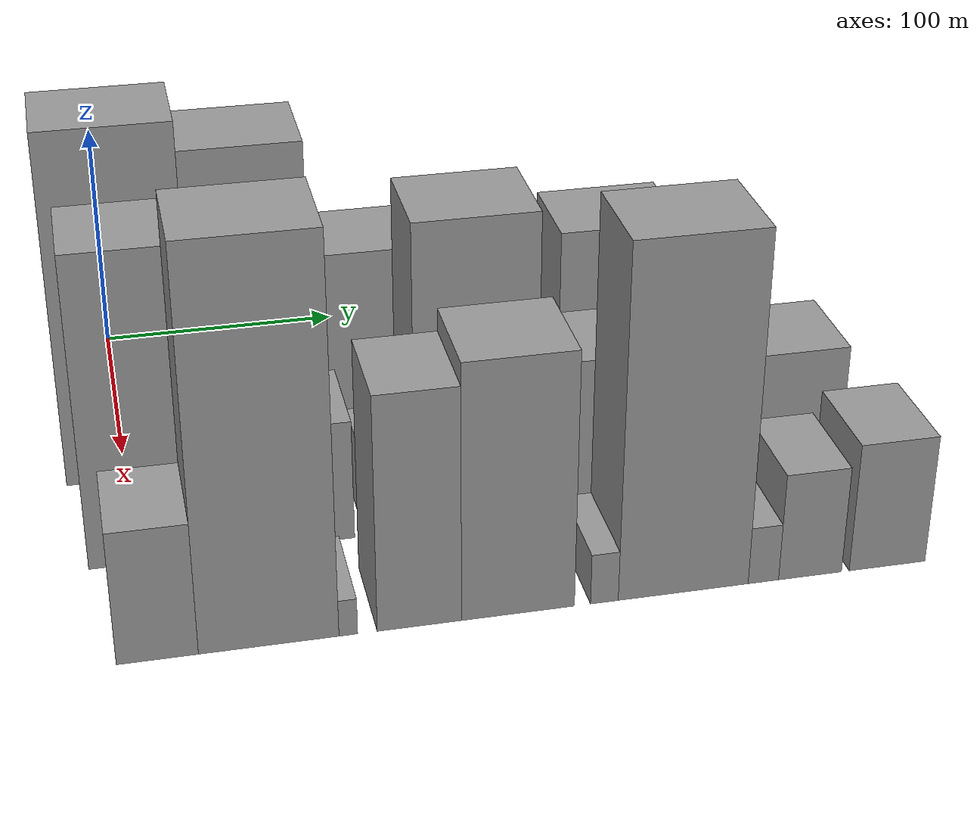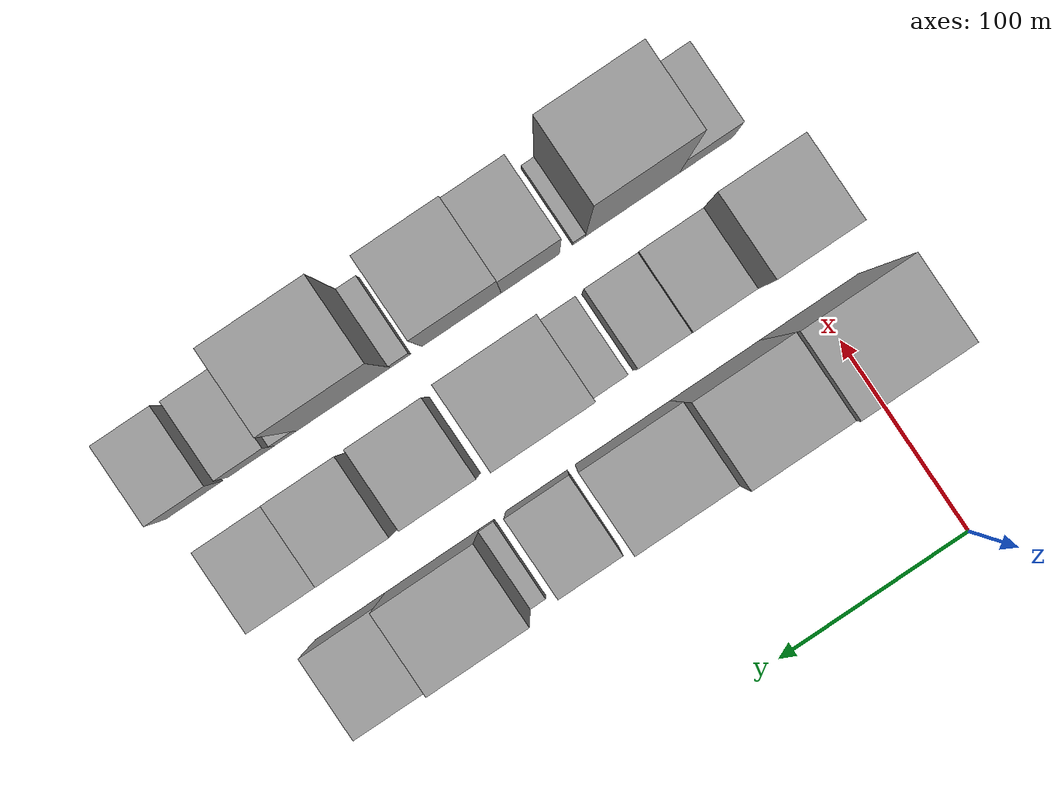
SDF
<sdf version="1.6">
 <world name="default">
  <model name="building_16">
   <static>1</static>
   <pose>100.0000 3.0537 0 0.000000 0.000000 0.000000</pose>
   <link name="link">
    <pose>0 0 75.00 0 0 0</pose>
    <collision name="collision"><geometry><box><size>40.0000 52.0484 150.0000</size></box></geometry></collision>
    <visual name="visual">
     <cast_shadows>0</cast_shadows>
     <geometry><box><size>40.0000 52.0484 150.0000</size></box></geometry>
     <material>
      <script>
       <uri>model://grey_wall/materials/scripts</uri>
       <uri>model://grey_wall/materials/textures</uri>
       <name>vrc/grey_wall</name>
      </script>
     </material>
    </visual>
   </link>
  </model>
  <model name="building_17">
   <static>1</static>
   <pose>100.0000 52.6405 0 0.000000 0.000000 0.000000</pose>
   <link name="link">
    <pose>0 0 69.00 0 0 0</pose>
    <collision name="collision"><geometry><box><size>40.0000 47.1252 138.0000</size></box></geometry></collision>
    <visual name="visual">
     <cast_shadows>0</cast_shadows>
     <geometry><box><size>40.0000 47.1252 138.0000</size></box></geometry>
     <material>
      <script>
       <uri>model://grey_wall/materials/scripts</uri>
       <uri>model://grey_wall/materials/textures</uri>
       <name>vrc/grey_wall</name>
      </script>
     </material>
    </visual>
   </link>
  </model>
  <model name="building_18">
   <static>1</static>
   <pose>100.0000 101.2322 0 0.000000 0.000000 0.000000</pose>
   <link name="link">
    <pose>0 0 45.00 0 0 0</pose>
    <collision name="collision"><geometry><box><size>40.0000 50.0583 90.0000</size></box></geometry></collision>
    <visual name="visual">
     <cast_shadows>0</cast_shadows>
     <geometry><box><size>40.0000 50.0583 90.0000</size></box></geometry>
     <material>
      <script>
       <uri>model://grey_wall/materials/scripts</uri>
       <uri>model://grey_wall/materials/textures</uri>
       <name>vrc/grey_wall</name>
      </script>
     </material>
    </visual>
   </link>
  </model>
  <model name="building_19">
   <static>1</static>
   <pose>100.0000 146.4236 0 0.000000 0.000000 0.000000</pose>
   <link name="link">
    <pose>0 0 28.50 0 0 0</pose>
    <collision name="collision"><geometry><box><size>40.0000 32.3245 57.0000</size></box></geometry></collision>
    <visual name="visual">
     <cast_shadows>0</cast_shadows>
     <geometry><box><size>40.0000 32.3245 57.0000</size></box></geometry>
     <material>
      <script>
       <uri>model://grey_wall/materials/scripts</uri>
       <uri>model://grey_wall/materials/textures</uri>
       <name>vrc/grey_wall</name>
      </script>
     </material>
    </visual>
   </link>
  </model>
  <model name="building_20">
   <static>1</static>
   <pose>100.0000 172.5480 0 0.000000 0.000000 0.000000</pose>
   <link name="link">
    <pose>0 0 9.00 0 0 0</pose>
    <collision name="collision"><geometry><box><size>40.0000 7.9243 18.0000</size></box></geometry></collision>
    <visual name="visual">
     <cast_shadows>0</cast_shadows>
     <geometry><box><size>40.0000 7.9243 18.0000</size></box></geometry>
     <material>
      <script>
       <uri>model://grey_wall/materials/scripts</uri>
       <uri>model://grey_wall/materials/textures</uri>
       <name>vrc/grey_wall</name>
      </script>
     </material>
    </visual>
   </link>
  </model>
  <model name="building_21">
   <static>1</static>
   <pose>100.0000 201.1346 0 0.000000 0.000000 0.000000</pose>
   <link name="link">
    <pose>0 0 45.00 0 0 0</pose>
    <collision name="collision"><geometry><box><size>40.0000 49.2489 90.0000</size></box></geometry></collision>
    <visual name="visual">
     <cast_shadows>0</cast_shadows>
     <geometry><box><size>40.0000 49.2489 90.0000</size></box></geometry>
     <material>
      <script>
       <uri>model://grey_wall/materials/scripts</uri>
       <uri>model://grey_wall/materials/textures</uri>
       <name>vrc/grey_wall</name>
      </script>
     </material>
    </visual>
   </link>
  </model>
  <model name="building_22">
   <static>1</static>
   <pose>100.0000 244.1999 0 0.000000 0.000000 0.000000</pose>
   <link name="link">
    <pose>0 0 34.50 0 0 0</pose>
    <collision name="collision"><geometry><box><size>40.0000 36.8816 69.0000</size></box></geometry></collision>
    <visual name="visual">
     <cast_shadows>0</cast_shadows>
     <geometry><box><size>40.0000 36.8816 69.0000</size></box></geometry>
     <material>
      <script>
       <uri>model://grey_wall/materials/scripts</uri>
       <uri>model://grey_wall/materials/textures</uri>
       <name>vrc/grey_wall</name>
      </script>
     </material>
    </visual>
   </link>
  </model>
  <model name="building_50">
   <static>1</static>
   <pose>160.0000 2.9034 0 0.000000 0.000000 0.000000</pose>
   <link name="link">
    <pose>0 0 64.50 0 0 0</pose>
    <collision name="collision"><geometry><box><size>40.0000 40.4911 129.0000</size></box></geometry></collision>
    <visual name="visual">
     <cast_shadows>0</cast_shadows>
     <geometry><box><size>40.0000 40.4911 129.0000</size></box></geometry>
     <material>
      <script>
       <uri>model://grey_wall/materials/scripts</uri>
       <uri>model://grey_wall/materials/textures</uri>
       <name>vrc/grey_wall</name>
      </script>
     </material>
    </visual>
   </link>
  </model>
  <model name="building_51">
   <static>1</static>
   <pose>160.0000 39.2276 0 0.000000 0.000000 0.000000</pose>
   <link name="link">
    <pose>0 0 28.50 0 0 0</pose>
    <collision name="collision"><geometry><box><size>40.0000 32.1573 57.0000</size></box></geometry></collision>
    <visual name="visual">
     <cast_shadows>0</cast_shadows>
     <geometry><box><size>40.0000 32.1573 57.0000</size></box></geometry>
     <material>
      <script>
       <uri>model://grey_wall/materials/scripts</uri>
       <uri>model://grey_wall/materials/textures</uri>
       <name>vrc/grey_wall</name>
      </script>
     </material>
    </visual>
   </link>
  </model>
  <model name="building_52">
   <static>1</static>
   <pose>160.0000 68.7765 0 0.000000 0.000000 0.000000</pose>
   <link name="link">
    <pose>0 0 25.50 0 0 0</pose>
    <collision name="collision"><geometry><box><size>40.0000 26.9407 51.0000</size></box></geometry></collision>
    <visual name="visual">
     <cast_shadows>0</cast_shadows>
     <geometry><box><size>40.0000 26.9407 51.0000</size></box></geometry>
     <material>
      <script>
       <uri>model://grey_wall/materials/scripts</uri>
       <uri>model://grey_wall/materials/textures</uri>
       <name>vrc/grey_wall</name>
      </script>
     </material>
    </visual>
   </link>
  </model>
  <model name="building_53">
   <static>1</static>
   <pose>160.0000 95.9330 0 0.000000 0.000000 0.000000</pose>
   <link name="link">
    <pose>0 0 16.50 0 0 0</pose>
    <collision name="collision"><geometry><box><size>40.0000 19.3723 33.0000</size></box></geometry></collision>
    <visual name="visual">
     <cast_shadows>0</cast_shadows>
     <geometry><box><size>40.0000 19.3723 33.0000</size></box></geometry>
     <material>
      <script>
       <uri>model://grey_wall/materials/scripts</uri>
       <uri>model://grey_wall/materials/textures</uri>
       <name>vrc/grey_wall</name>
      </script>
     </material>
    </visual>
   </link>
  </model>
  <model name="building_54">
   <static>1</static>
   <pose>160.0000 129.4834 0 0.000000 0.000000 0.000000</pose>
   <link name="link">
    <pose>0 0 64.50 0 0 0</pose>
    <collision name="collision"><geometry><box><size>40.0000 47.7286 129.0000</size></box></geometry></collision>
    <visual name="visual">
     <cast_shadows>0</cast_shadows>
     <geometry><box><size>40.0000 47.7286 129.0000</size></box></geometry>
     <material>
      <script>
       <uri>model://grey_wall/materials/scripts</uri>
       <uri>model://grey_wall/materials/textures</uri>
       <name>vrc/grey_wall</name>
      </script>
     </material>
    </visual>
   </link>
  </model>
  <model name="building_55">
   <static>1</static>
   <pose>160.0000 181.3222 0 0.000000 0.000000 0.000000</pose>
   <link name="link">
    <pose>0 0 33.00 0 0 0</pose>
    <collision name="collision"><geometry><box><size>40.0000 37.9489 66.0000</size></box></geometry></collision>
    <visual name="visual">
     <cast_shadows>0</cast_shadows>
     <geometry><box><size>40.0000 37.9489 66.0000</size></box></geometry>
     <material>
      <script>
       <uri>model://grey_wall/materials/scripts</uri>
       <uri>model://grey_wall/materials/textures</uri>
       <name>vrc/grey_wall</name>
      </script>
     </material>
    </visual>
   </link>
  </model>
  <model name="building_56">
   <static>1</static>
   <pose>160.0000 223.4283 0 0.000000 0.000000 0.000000</pose>
   <link name="link">
    <pose>0 0 31.50 0 0 0</pose>
    <collision name="collision"><geometry><box><size>40.0000 36.2633 63.0000</size></box></geometry></collision>
    <visual name="visual">
     <cast_shadows>0</cast_shadows>
     <geometry><box><size>40.0000 36.2633 63.0000</size></box></geometry>
     <material>
      <script>
       <uri>model://grey_wall/materials/scripts</uri>
       <uri>model://grey_wall/materials/textures</uri>
       <name>vrc/grey_wall</name>
      </script>
     </material>
    </visual>
   </link>
  </model>
  <model name="building_57">
   <static>1</static>
   <pose>160.0000 258.8193 0 0.000000 0.000000 0.000000</pose>
   <link name="link">
    <pose>0 0 30.00 0 0 0</pose>
    <collision name="collision"><geometry><box><size>40.0000 34.5187 60.0000</size></box></geometry></collision>
    <visual name="visual">
     <cast_shadows>0</cast_shadows>
     <geometry><box><size>40.0000 34.5187 60.0000</size></box></geometry>
     <material>
      <script>
       <uri>model://grey_wall/materials/scripts</uri>
       <uri>model://grey_wall/materials/textures</uri>
       <name>vrc/grey_wall</name>
      </script>
     </material>
    </visual>
   </link>
  </model>
  <model name="building_84">
   <static>1</static>
   <pose>220.0000 3.2790 0 0.000000 0.000000 0.000000</pose>
   <link name="link">
    <pose>0 0 27.00 0 0 0</pose>
    <collision name="collision"><geometry><box><size>40.0000 28.3241 54.0000</size></box></geometry></collision>
    <visual name="visual">
     <cast_shadows>0</cast_shadows>
     <geometry><box><size>40.0000 28.3241 54.0000</size></box></geometry>
     <material>
      <script>
       <uri>model://grey_wall/materials/scripts</uri>
       <uri>model://grey_wall/materials/textures</uri>
       <name>vrc/grey_wall</name>
      </script>
     </material>
    </visual>
   </link>
  </model>
  <model name="building_85">
   <static>1</static>
   <pose>220.0000 42.1496 0 0.000000 0.000000 0.000000</pose>
   <link name="link">
    <pose>0 0 79.50 0 0 0</pose>
    <collision name="collision"><geometry><box><size>40.0000 49.4169 159.0000</size></box></geometry></collision>
    <visual name="visual">
     <cast_shadows>0</cast_shadows>
     <geometry><box><size>40.0000 49.4169 159.0000</size></box></geometry>
     <material>
      <script>
       <uri>model://grey_wall/materials/scripts</uri>
       <uri>model://grey_wall/materials/textures</uri>
       <name>vrc/grey_wall</name>
      </script>
     </material>
    </visual>
   </link>
  </model>
  <model name="building_86">
   <static>1</static>
   <pose>220.0000 70.1875 0 0.000000 0.000000 0.000000</pose>
   <link name="link">
    <pose>0 0 7.50 0 0 0</pose>
    <collision name="collision"><geometry><box><size>40.0000 6.6591 15.0000</size></box></geometry></collision>
    <visual name="visual">
     <cast_shadows>0</cast_shadows>
     <geometry><box><size>40.0000 6.6591 15.0000</size></box></geometry>
     <material>
      <script>
       <uri>model://grey_wall/materials/scripts</uri>
       <uri>model://grey_wall/materials/textures</uri>
       <name>vrc/grey_wall</name>
      </script>
     </material>
    </visual>
   </link>
  </model>
  <model name="building_87">
   <static>1</static>
   <pose>220.0000 95.7562 0 0.000000 0.000000 0.000000</pose>
   <link name="link">
    <pose>0 0 48.00 0 0 0</pose>
    <collision name="collision"><geometry><box><size>40.0000 30.4783 96.0000</size></box></geometry></collision>
    <visual name="visual">
     <cast_shadows>0</cast_shadows>
     <geometry><box><size>40.0000 30.4783 96.0000</size></box></geometry>
     <material>
      <script>
       <uri>model://grey_wall/materials/scripts</uri>
       <uri>model://grey_wall/materials/textures</uri>
       <name>vrc/grey_wall</name>
      </script>
     </material>
    </visual>
   </link>
  </model>
  <model name="building_88">
   <static>1</static>
   <pose>220.0000 131.7616 0 0.000000 0.000000 0.000000</pose>
   <link name="link">
    <pose>0 0 52.50 0 0 0</pose>
    <collision name="collision"><geometry><box><size>40.0000 41.5324 105.0000</size></box></geometry></collision>
    <visual name="visual">
     <cast_shadows>0</cast_shadows>
     <geometry><box><size>40.0000 41.5324 105.0000</size></box></geometry>
     <material>
      <script>
       <uri>model://grey_wall/materials/scripts</uri>
       <uri>model://grey_wall/materials/textures</uri>
       <name>vrc/grey_wall</name>
      </script>
     </material>
    </visual>
   </link>
  </model>
  <model name="building_89">
   <static>1</static>
   <pose>220.0000 163.7137 0 0.000000 0.000000 0.000000</pose>
   <link name="link">
    <pose>0 0 10.50 0 0 0</pose>
    <collision name="collision"><geometry><box><size>40.0000 10.3719 21.0000</size></box></geometry></collision>
    <visual name="visual">
     <cast_shadows>0</cast_shadows>
     <geometry><box><size>40.0000 10.3719 21.0000</size></box></geometry>
     <material>
      <script>
       <uri>model://grey_wall/materials/scripts</uri>
       <uri>model://grey_wall/materials/textures</uri>
       <name>vrc/grey_wall</name>
      </script>
     </material>
    </visual>
   </link>
  </model>
  <model name="building_90">
   <static>1</static>
   <pose>220.0000 193.5635 0 0.000000 0.000000 0.000000</pose>
   <link name="link">
    <pose>0 0 72.00 0 0 0</pose>
    <collision name="collision"><geometry><box><size>40.0000 49.3276 144.0000</size></box></geometry></collision>
    <visual name="visual">
     <cast_shadows>0</cast_shadows>
     <geometry><box><size>40.0000 49.3276 144.0000</size></box></geometry>
     <material>
      <script>
       <uri>model://grey_wall/materials/scripts</uri>
       <uri>model://grey_wall/materials/textures</uri>
       <name>vrc/grey_wall</name>
      </script>
     </material>
    </visual>
   </link>
  </model>
  <model name="building_91">
   <static>1</static>
   <pose>220.0000 224.0850 0 0.000000 0.000000 0.000000</pose>
   <link name="link">
    <pose>0 0 12.00 0 0 0</pose>
    <collision name="collision"><geometry><box><size>40.0000 11.7154 24.0000</size></box></geometry></collision>
    <visual name="visual">
     <cast_shadows>0</cast_shadows>
     <geometry><box><size>40.0000 11.7154 24.0000</size></box></geometry>
     <material>
      <script>
       <uri>model://grey_wall/materials/scripts</uri>
       <uri>model://grey_wall/materials/textures</uri>
       <name>vrc/grey_wall</name>
      </script>
     </material>
    </visual>
   </link>
  </model>
  <model name="building_92">
   <static>1</static>
   <pose>220.0000 242.1766 0 0.000000 0.000000 0.000000</pose>
   <link name="link">
    <pose>0 0 22.50 0 0 0</pose>
    <collision name="collision"><geometry><box><size>40.0000 24.4677 45.0000</size></box></geometry></collision>
    <visual name="visual">
     <cast_shadows>0</cast_shadows>
     <geometry><box><size>40.0000 24.4677 45.0000</size></box></geometry>
     <material>
      <script>
       <uri>model://grey_wall/materials/scripts</uri>
       <uri>model://grey_wall/materials/textures</uri>
       <name>vrc/grey_wall</name>
      </script>
     </material>
    </visual>
   </link>
  </model>
  <model name="building_93">
   <static>1</static>
   <pose>220.0000 272.3512 0 0.000000 0.000000 0.000000</pose>
   <link name="link">
    <pose>0 0 27.00 0 0 0</pose>
    <collision name="collision"><geometry><box><size>40.0000 29.8816 54.0000</size></box></geometry></collision>
    <visual name="visual">
     <cast_shadows>0</cast_shadows>
     <geometry><box><size>40.0000 29.8816 54.0000</size></box></geometry>
     <material>
      <script>
       <uri>model://grey_wall/materials/scripts</uri>
       <uri>model://grey_wall/materials/textures</uri>
       <name>vrc/grey_wall</name>
      </script>
     </material>
    </visual>
   </link>
  </model>
 </world>
</sdf>
